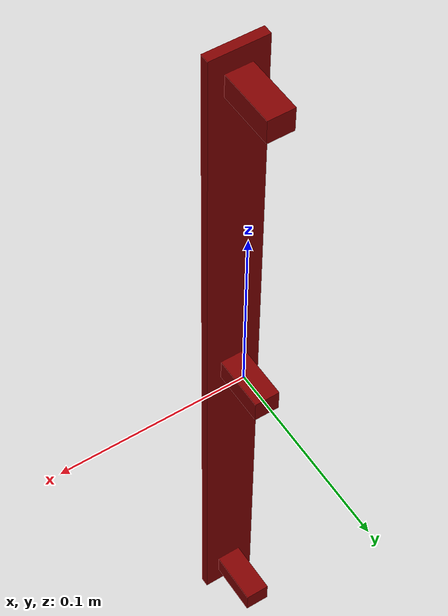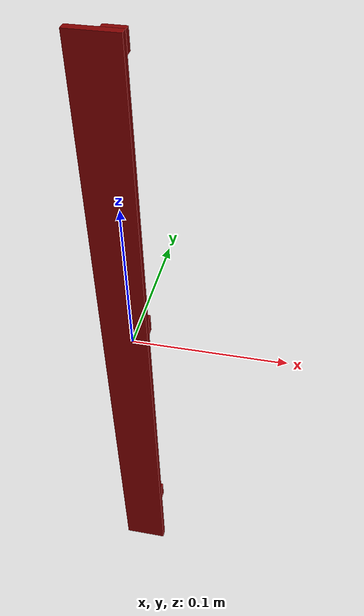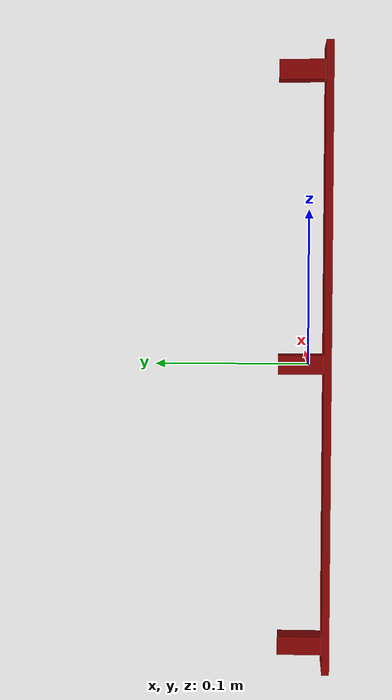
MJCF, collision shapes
<?xml version='1.0' encoding='UTF-8'?>
<mujoco model="model">
  <option timestep="0.002" gravity="0.0 0.0 -9.81"/>
  <compiler angle="radian"/>
  <asset>
    <mesh file="visuals/CabinetHandle021.obj" name="CabinetHandle021_vis"/>
    <texture file="visuals/T_BC001.png" name="tex" type="2d"/>
    <material name="mat" rgba="1 1 1 1.0" texture="tex" shininess="0.4472135901451111" specular="0.3103448502657381"/>
  </asset>
  <default>
    <default class="visual">
      <geom conaffinity="0" contype="0" group="1" type="mesh"/>
    </default>
    <default class="collision">
      <geom group="0" rgba="0.5 0 0 0.5" density="1.0" solref="0.004 1" solimp="0.998 0.998 0.001"/>
    </default>
    <default class="spawn">
      <geom group="0" rgba="1 1 1 0.5" contype="0" conaffinity="0"/>
      <site group="0" rgba="1 1 1 0.5"/>
    </default>
    <default class="region">
      <geom group="1" conaffinity="0" contype="0" rgba="0 1 0 0" mass="0"/>
    </default>
  </default>
  <worldbody>
    <body>
      <body name="object">
        <geom mesh="CabinetHandle021_vis" type="mesh" solimp="0.998 0.998 0.001" solref="0.001 1" friction="0.95 0.3 0.1" class="visual" material="mat"/>
        <geom type="box" pos="2.1228814262030937e-09 -0.011946987360715866 0.0" size="0.014573062770068645 0.0024639107286930084 0.20434318482875824" quat="1.0 0.0 0.0 0.0" class="collision"/>
        <geom type="box" pos="0.00016692587814759463 0.005144401919096708 5.9201378462603316e-05" size="0.0066745225340127945 0.014658631756901741 0.006232067942619324" quat="1.0 0.0 0.0 0.0" class="collision"/>
        <geom type="box" pos="0.00016692587814759463 0.005144402384757996 -0.1873619705438614" size="0.006626402493566275 0.014658619649708271 0.006187136285007" quat="1.0 0.0 0.0 0.0" class="collision"/>
        <geom type="box" pos="0.00016692587814759463 0.005144402384757996 0.18762050569057465" size="0.006671158596873283 0.014658618718385696 0.006228928454220295" quat="1.0 0.0 0.0 0.0" class="collision"/>
        <geom class="region" name="reg_main" type="box" pos="3.213062926832322e-09 7.450580707946131e-10 0.0" size="0.015573062770068646 0.020803045317530633 0.20534318482875824"/>
      </body>
    </body>
  </worldbody>
  <actuator/>
</mujoco>
